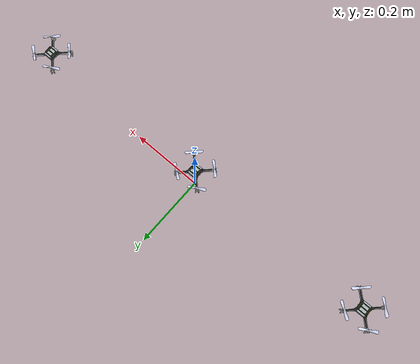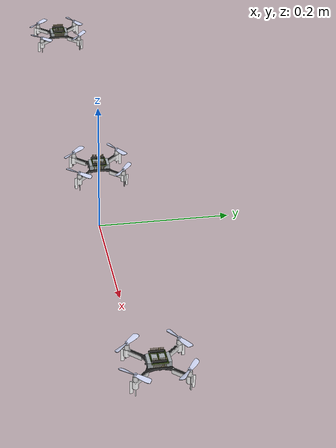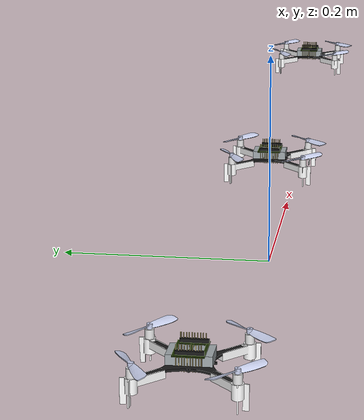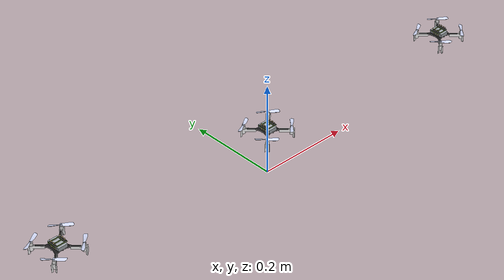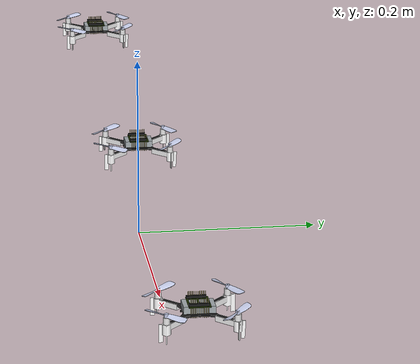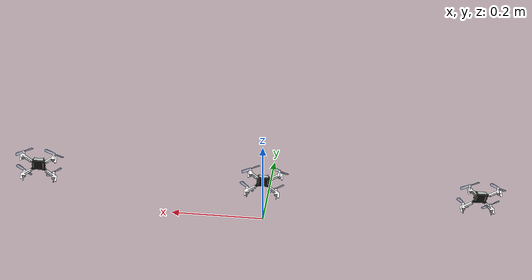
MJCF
<mujoco model="cf2_three">
  <!--======================================================================
    1) Compiler / Default Classes
  ======================================================================-->
  <compiler inertiafromgeom="false" meshdir="assets" autolimits="true"/>
  <default>
    <default class="cf2">
      <!-- Visual-meshes (no collisions) -->
      <default class="visual">
        <geom group="2" type="mesh" contype="0" conaffinity="0"/>
      </default>
      <!-- Collision-meshes -->
      <default class="collision">
        <geom group="3" type="mesh" contype="1" conaffinity="1"/>
      </default>
      <!-- All sites in class “cf2” default to group 5 -->
      <site group="5"/>
    </default>
  </default>

  <!--======================================================================
    2) Assets: Materials + Meshes (same as before)
  ======================================================================-->
  <asset>
    <material name="polished_plastic"     rgba="0.631 0.659 0.678 1"/>
    <material name="polished_gold"        rgba="0.969 0.878 0.600 1"/>
    <material name="medium_gloss_plastic" rgba="0.109 0.184 0.000 1"/>
    <material name="propeller_plastic"    rgba="0.792 0.820 0.933 1"/>
    <material name="white"                rgba="1     1     1     1"/>
    <material name="body_frame_plastic"   rgba="0.102 0.102 0.102 1"/>
    <material name="burnished_chrome"     rgba="0.898 0.898 0.898 1"/>

    <!-- Visual meshes -->
    <mesh file="cf2_0.obj"/>
    <mesh file="cf2_1.obj"/>
    <mesh file="cf2_2.obj"/>
    <mesh file="cf2_3.obj"/>
    <mesh file="cf2_4.obj"/>
    <mesh file="cf2_5.obj"/>
    <mesh file="cf2_6.obj"/>

    <!-- Collision meshes -->
    <mesh file="cf2_collision_0.obj"/>
    <mesh file="cf2_collision_1.obj"/>
    <mesh file="cf2_collision_2.obj"/>
    <mesh file="cf2_collision_3.obj"/>
    <mesh file="cf2_collision_4.obj"/>
    <mesh file="cf2_collision_5.obj"/>
    <mesh file="cf2_collision_6.obj"/>
    <mesh file="cf2_collision_7.obj"/>
    <mesh file="cf2_collision_8.obj"/>
    <mesh file="cf2_collision_9.obj"/>
    <mesh file="cf2_collision_10.obj"/>
    <mesh file="cf2_collision_11.obj"/>
    <mesh file="cf2_collision_12.obj"/>
    <mesh file="cf2_collision_13.obj"/>
    <mesh file="cf2_collision_14.obj"/>
    <mesh file="cf2_collision_15.obj"/>
    <mesh file="cf2_collision_16.obj"/>
    <mesh file="cf2_collision_17.obj"/>
    <mesh file="cf2_collision_18.obj"/>
    <mesh file="cf2_collision_19.obj"/>
    <mesh file="cf2_collision_20.obj"/>
    <mesh file="cf2_collision_21.obj"/>
    <mesh file="cf2_collision_22.obj"/>
    <mesh file="cf2_collision_23.obj"/>
    <mesh file="cf2_collision_24.obj"/>
    <mesh file="cf2_collision_25.obj"/>
    <mesh file="cf2_collision_26.obj"/>
    <mesh file="cf2_collision_27.obj"/>
    <mesh file="cf2_collision_28.obj"/>
    <mesh file="cf2_collision_29.obj"/>
    <mesh file="cf2_collision_30.obj"/>
    <mesh file="cf2_collision_31.obj"/>
  </asset>

  <!--======================================================================
    3) Worldbody: Three Separate cf2 Bodies
  ======================================================================-->
  <worldbody>

    <body name="cf2_1" pos="-0.5 0 0.1" childclass="cf2">
      <freejoint/>
      <inertial pos="0 0 0" mass="0.027" diaginertia="2.3951e-5 2.3951e-5 3.2347e-5"/>
      <!-- Visual meshes -->
      <geom mesh="cf2_0" material="propeller_plastic"    class="visual"/>
      <geom mesh="cf2_1" material="medium_gloss_plastic" class="visual"/>
      <geom mesh="cf2_2" material="polished_gold"        class="visual"/>
      <geom mesh="cf2_3" material="polished_plastic"     class="visual"/>
      <geom mesh="cf2_4" material="burnished_chrome"     class="visual"/>
      <geom mesh="cf2_5" material="body_frame_plastic"   class="visual"/>
      <geom mesh="cf2_6" material="white"                class="visual"/>
      <!-- Collision meshes -->
      <geom mesh="cf2_collision_0"  class="collision"/>
      <geom mesh="cf2_collision_1"  class="collision"/>
      <geom mesh="cf2_collision_2"  class="collision"/>
      <geom mesh="cf2_collision_3"  class="collision"/>
      <geom mesh="cf2_collision_4"  class="collision"/>
      <geom mesh="cf2_collision_5"  class="collision"/>
      <geom mesh="cf2_collision_6"  class="collision"/>
      <geom mesh="cf2_collision_7"  class="collision"/>
      <geom mesh="cf2_collision_8"  class="collision"/>
      <geom mesh="cf2_collision_9"  class="collision"/>
      <geom mesh="cf2_collision_10" class="collision"/>
      <geom mesh="cf2_collision_11" class="collision"/>
      <geom mesh="cf2_collision_12" class="collision"/>
      <geom mesh="cf2_collision_13" class="collision"/>
      <geom mesh="cf2_collision_14" class="collision"/>
      <geom mesh="cf2_collision_15" class="collision"/>
      <geom mesh="cf2_collision_16" class="collision"/>
      <geom mesh="cf2_collision_17" class="collision"/>
      <geom mesh="cf2_collision_18" class="collision"/>
      <geom mesh="cf2_collision_19" class="collision"/>
      <geom mesh="cf2_collision_20" class="collision"/>
      <geom mesh="cf2_collision_21" class="collision"/>
      <geom mesh="cf2_collision_22" class="collision"/>
      <geom mesh="cf2_collision_23" class="collision"/>
      <geom mesh="cf2_collision_24" class="collision"/>
      <geom mesh="cf2_collision_25" class="collision"/>
      <geom mesh="cf2_collision_26" class="collision"/>
      <geom mesh="cf2_collision_27" class="collision"/>
      <geom mesh="cf2_collision_28" class="collision"/>
      <geom mesh="cf2_collision_29" class="collision"/>
      <geom mesh="cf2_collision_30" class="collision"/>
      <geom mesh="cf2_collision_31" class="collision"/>
      <!-- Two sites (each body needs unique site names!) -->
      <site name="imu1"/>
      <site name="actuation1"/>
    </body>

    <body name="cf2_2" pos="0.0 0 0.1" childclass="cf2">
      <freejoint/>
      <inertial pos="0 0 0" mass="0.027" diaginertia="2.3951e-5 2.3951e-5 3.2347e-5"/>
      <!-- Visual meshes -->
      <geom mesh="cf2_0" material="propeller_plastic"    class="visual"/>
      <geom mesh="cf2_1" material="medium_gloss_plastic" class="visual"/>
      <geom mesh="cf2_2" material="polished_gold"        class="visual"/>
      <geom mesh="cf2_3" material="polished_plastic"     class="visual"/>
      <geom mesh="cf2_4" material="burnished_chrome"     class="visual"/>
      <geom mesh="cf2_5" material="body_frame_plastic"   class="visual"/>
      <geom mesh="cf2_6" material="white"                class="visual"/>
      <!-- Collision meshes -->
      <geom mesh="cf2_collision_0"  class="collision"/>
      <geom mesh="cf2_collision_1"  class="collision"/>
      <geom mesh="cf2_collision_2"  class="collision"/>
      <geom mesh="cf2_collision_3"  class="collision"/>
      <geom mesh="cf2_collision_4"  class="collision"/>
      <geom mesh="cf2_collision_5"  class="collision"/>
      <geom mesh="cf2_collision_6"  class="collision"/>
      <geom mesh="cf2_collision_7"  class="collision"/>
      <geom mesh="cf2_collision_8"  class="collision"/>
      <geom mesh="cf2_collision_9"  class="collision"/>
      <geom mesh="cf2_collision_10" class="collision"/>
      <geom mesh="cf2_collision_11" class="collision"/>
      <geom mesh="cf2_collision_12" class="collision"/>
      <geom mesh="cf2_collision_13" class="collision"/>
      <geom mesh="cf2_collision_14" class="collision"/>
      <geom mesh="cf2_collision_15" class="collision"/>
      <geom mesh="cf2_collision_16" class="collision"/>
      <geom mesh="cf2_collision_17" class="collision"/>
      <geom mesh="cf2_collision_18" class="collision"/>
      <geom mesh="cf2_collision_19" class="collision"/>
      <geom mesh="cf2_collision_20" class="collision"/>
      <geom mesh="cf2_collision_21" class="collision"/>
      <geom mesh="cf2_collision_22" class="collision"/>
      <geom mesh="cf2_collision_23" class="collision"/>
      <geom mesh="cf2_collision_24" class="collision"/>
      <geom mesh="cf2_collision_25" class="collision"/>
      <geom mesh="cf2_collision_26" class="collision"/>
      <geom mesh="cf2_collision_27" class="collision"/>
      <geom mesh="cf2_collision_28" class="collision"/>
      <geom mesh="cf2_collision_29" class="collision"/>
      <geom mesh="cf2_collision_30" class="collision"/>
      <geom mesh="cf2_collision_31" class="collision"/>
      <!-- Two sites (unique names again) -->
      <site name="imu2"/>
      <site name="actuation2"/>
    </body>

    <body name="cf2_3" pos="0.5 0 0.1" childclass="cf2">
      <freejoint/>
      <inertial pos="0 0 0" mass="0.027" diaginertia="2.3951e-5 2.3951e-5 3.2347e-5"/>
      <!-- Visual meshes -->
      <geom mesh="cf2_0" material="propeller_plastic"    class="visual"/>
      <geom mesh="cf2_1" material="medium_gloss_plastic" class="visual"/>
      <geom mesh="cf2_2" material="polished_gold"        class="visual"/>
      <geom mesh="cf2_3" material="polished_plastic"     class="visual"/>
      <geom mesh="cf2_4" material="burnished_chrome"     class="visual"/>
      <geom mesh="cf2_5" material="body_frame_plastic"   class="visual"/>
      <geom mesh="cf2_6" material="white"                class="visual"/>
      <!-- Collision meshes -->
      <geom mesh="cf2_collision_0"  class="collision"/>
      <geom mesh="cf2_collision_1"  class="collision"/>
      <geom mesh="cf2_collision_2"  class="collision"/>
      <geom mesh="cf2_collision_3"  class="collision"/>
      <geom mesh="cf2_collision_4"  class="collision"/>
      <geom mesh="cf2_collision_5"  class="collision"/>
      <geom mesh="cf2_collision_6"  class="collision"/>
      <geom mesh="cf2_collision_7"  class="collision"/>
      <geom mesh="cf2_collision_8"  class="collision"/>
      <geom mesh="cf2_collision_9"  class="collision"/>
      <geom mesh="cf2_collision_10" class="collision"/>
      <geom mesh="cf2_collision_11" class="collision"/>
      <geom mesh="cf2_collision_12" class="collision"/>
      <geom mesh="cf2_collision_13" class="collision"/>
      <geom mesh="cf2_collision_14" class="collision"/>
      <geom mesh="cf2_collision_15" class="collision"/>
      <geom mesh="cf2_collision_16" class="collision"/>
      <geom mesh="cf2_collision_17" class="collision"/>
      <geom mesh="cf2_collision_18" class="collision"/>
      <geom mesh="cf2_collision_19" class="collision"/>
      <geom mesh="cf2_collision_20" class="collision"/>
      <geom mesh="cf2_collision_21" class="collision"/>
      <geom mesh="cf2_collision_22" class="collision"/>
      <geom mesh="cf2_collision_23" class="collision"/>
      <geom mesh="cf2_collision_24" class="collision"/>
      <geom mesh="cf2_collision_25" class="collision"/>
      <geom mesh="cf2_collision_26" class="collision"/>
      <geom mesh="cf2_collision_27" class="collision"/>
      <geom mesh="cf2_collision_28" class="collision"/>
      <geom mesh="cf2_collision_29" class="collision"/>
      <geom mesh="cf2_collision_30" class="collision"/>
      <geom mesh="cf2_collision_31" class="collision"/>
      <!-- Two sites (unique) -->
      <site name="imu3"/>
      <site name="actuation3"/>
    </body>
  </worldbody>

  <actuator>
    <!--——– CF2 #1 actuators ———-->
    <motor class="cf2" name="cf2_1_thrust"   ctrlrange="0 0.35"
           gear="0 0 1 0 0 0"  site="actuation1"/>
    <motor class="cf2" name="cf2_1_xmoment"  ctrlrange="-1 1"
           gear="0 0 0 -0.00001 0 0" site="actuation1"/>
    <motor class="cf2" name="cf2_1_ymoment"  ctrlrange="-1 1"
           gear="0 0 0 0 -0.00001 0" site="actuation1"/>
    <motor class="cf2" name="cf2_1_zmoment"  ctrlrange="-1 1"
           gear="0 0 0 0 0 -0.00001" site="actuation1"/>

    <!--——– CF2 #2 actuators ———-->
    <motor class="cf2" name="cf2_2_thrust"   ctrlrange="0 0.35"
           gear="0 0 1 0 0 0"  site="actuation2"/>
    <motor class="cf2" name="cf2_2_xmoment"  ctrlrange="-1 1"
           gear="0 0 0 -0.00001 0 0" site="actuation2"/>
    <motor class="cf2" name="cf2_2_ymoment"  ctrlrange="-1 1"
           gear="0 0 0 0 -0.00001 0" site="actuation2"/>
    <motor class="cf2" name="cf2_2_zmoment"  ctrlrange="-1 1"
           gear="0 0 0 0 0 -0.00001" site="actuation2"/>

    <!--——– CF2 #3 actuators ———-->
    <motor class="cf2" name="cf2_3_thrust"   ctrlrange="0 0.35"
           gear="0 0 1 0 0 0"  site="actuation3"/>
    <motor class="cf2" name="cf2_3_xmoment"  ctrlrange="-1 1"
           gear="0 0 0 -0.00001 0 0" site="actuation3"/>
    <motor class="cf2" name="cf2_3_ymoment"  ctrlrange="-1 1"
           gear="0 0 0 0 -0.00001 0" site="actuation3"/>
    <motor class="cf2" name="cf2_3_zmoment"  ctrlrange="-1 1"
           gear="0 0 0 0 0 -0.00001" site="actuation3"/>
  </actuator>

  <sensor>
    <!-- CF2 #1 sensors -->
    <gyro          name="cf2_1_gyro"    site="imu1"/>
    <accelerometer name="cf2_1_linacc"  site="imu1"/>
    <framequat     name="cf2_1_quat"    objtype="site" objname="imu1"/>

    <!-- CF2 #2 sensors -->
    <gyro          name="cf2_2_gyro"    site="imu2"/>
    <accelerometer name="cf2_2_linacc"  site="imu2"/>
    <framequat     name="cf2_2_quat"    objtype="site" objname="imu2"/>

    <!-- CF2 #3 sensors -->
    <gyro          name="cf2_3_gyro"    site="imu3"/>
    <accelerometer name="cf2_3_linacc"  site="imu3"/>
    <framequat     name="cf2_3_quat"    objtype="site" objname="imu3"/>
  </sensor>
</mujoco>
